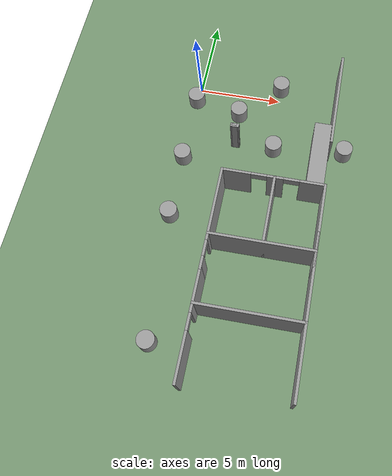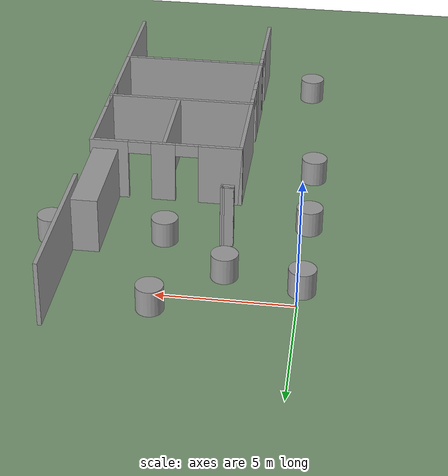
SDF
<sdf version="1.7">
 <world name="default">
  <model name="ground_plane">
   <static>1</static>
   <link name="link">
    <collision name="collision">
     <geometry><plane><normal>0 0 1</normal><size>600 600</size></plane></geometry>
     <surface>
      <contact><collide_bitmask>65535</collide_bitmask></contact>
      <friction><ode><mu>100</mu><mu2>50</mu2></ode></friction>
     </surface>
    </collision>
    <visual name="visual">
     <cast_shadows>0</cast_shadows>
     <geometry><plane><normal>0 0 1</normal><size>100 100</size></plane></geometry>
     <material><ambient>0.45 0.57 0.43 1</ambient><diffuse>0.45 0.57 0.43 1</diffuse></material>
    </visual>
   </link>
  </model>
  <model name="unit_box">
   <pose>7.98131 -4.36327 1.08892 0 -0.000118 -1.56862</pose>
   <link name="link">
    <inertial>
     <mass>1</mass>
     <inertia>
      <ixx>0.166667</ixx>
      <ixy>0</ixy>
      <ixz>0</ixz>
      <iyy>0.166667</iyy>
      <iyz>0</iyz>
      <izz>0.166667</izz>
     </inertia>
    </inertial>
    <collision name="collision"><geometry><box><size>3.92499 1 2.1783</size></box></geometry></collision>
    <visual name="visual">
     <geometry><box><size>3.92499 1 2.1783</size></box></geometry>
     <material>
      <script><name>Gazebo/Grey</name><uri>file://media/materials/scripts/gazebo.material</uri></script>
     </material>
    </visual>
   </link>
  </model>
  <model name="unit_cylinder">
   <pose>-0.092764 -5.01656 0.499994 4e-06 -2e-06 0</pose>
   <link name="link">
    <inertial>
     <mass>1</mass>
     <inertia><ixx>0.145833</ixx><ixy>0</ixy><ixz>0</ixz><iyy>0.145833</iyy><iyz>0</iyz><izz>0.125</izz></inertia>
    </inertial>
    <collision name="collision">
     <geometry><cylinder><radius>0.5</radius><length>1</length></cylinder></geometry>
    </collision>
    <visual name="visual">
     <geometry><cylinder><radius>0.5</radius><length>1</length></cylinder></geometry>
     <material>
      <script><name>Gazebo/Grey</name><uri>file://media/materials/scripts/gazebo.material</uri></script>
     </material>
    </visual>
   </link>
  </model>
  <model name="unit_cylinder_0">
   <pose>-0.106654 -0.917945 0.499997 -1e-06 1e-06 0</pose>
   <link name="link">
    <inertial>
     <mass>1</mass>
     <inertia><ixx>0.145833</ixx><ixy>0</ixy><ixz>0</ixz><iyy>0.145833</iyy><iyz>0</iyz><izz>0.125</izz></inertia>
    </inertial>
    <collision name="collision">
     <geometry><cylinder><radius>0.5</radius><length>1</length></cylinder></geometry>
    </collision>
    <visual name="visual">
     <geometry><cylinder><radius>0.5</radius><length>1</length></cylinder></geometry>
     <material>
      <script><name>Gazebo/Grey</name><uri>file://media/materials/scripts/gazebo.material</uri></script>
     </material>
    </visual>
   </link>
  </model>
  <model name="unit_cylinder_1">
   <pose>5.20322 -3.53373 0.499994 4e-06 -2e-06 0</pose>
   <link name="link">
    <inertial>
     <mass>1</mass>
     <inertia><ixx>0.145833</ixx><ixy>0</ixy><ixz>0</ixz><iyy>0.145833</iyy><iyz>0</iyz><izz>0.125</izz></inertia>
    </inertial>
    <collision name="collision">
     <geometry><cylinder><radius>0.5</radius><length>1</length></cylinder></geometry>
    </collision>
    <visual name="visual">
     <geometry><cylinder><radius>0.5</radius><length>1</length></cylinder></geometry>
     <material>
      <script><name>Gazebo/Grey</name><uri>file://media/materials/scripts/gazebo.material</uri></script>
     </material>
    </visual>
   </link>
  </model>
  <model name="unit_cylinder_2">
   <pose>5.01639 0.814958 0.5 0 -0 0</pose>
   <link name="link">
    <inertial>
     <mass>1</mass>
     <inertia><ixx>0.145833</ixx><ixy>0</ixy><ixz>0</ixz><iyy>0.145833</iyy><iyz>0</iyz><izz>0.125</izz></inertia>
    </inertial>
    <collision name="collision">
     <geometry><cylinder><radius>0.5</radius><length>1</length></cylinder></geometry>
    </collision>
    <visual name="visual">
     <geometry><cylinder><radius>0.5</radius><length>1</length></cylinder></geometry>
     <material>
      <script><name>Gazebo/Grey</name><uri>file://media/materials/scripts/gazebo.material</uri></script>
     </material>
    </visual>
   </link>
  </model>
  <model name="unit_cylinder_3">
   <pose>-0.035798 -8.83549 0.499996 -3e-06 1e-06 0</pose>
   <link name="link">
    <inertial>
     <mass>1</mass>
     <inertia><ixx>0.145833</ixx><ixy>0</ixy><ixz>0</ixz><iyy>0.145833</iyy><iyz>0</iyz><izz>0.125</izz></inertia>
    </inertial>
    <collision name="collision">
     <geometry><cylinder><radius>0.5</radius><length>1</length></cylinder></geometry>
    </collision>
    <visual name="visual">
     <geometry><cylinder><radius>0.5</radius><length>1</length></cylinder></geometry>
     <material>
      <script><name>Gazebo/Grey</name><uri>file://media/materials/scripts/gazebo.material</uri></script>
     </material>
    </visual>
   </link>
  </model>
  <model name="unit_cylinder_9">
   <pose>0.507553 -16.1833 0.499994 -4e-06 -2e-06 -0</pose>
   <link name="link">
    <inertial>
     <mass>1</mass>
     <inertia><ixx>0.145833</ixx><ixy>0</ixy><ixz>0</ixz><iyy>0.145833</iyy><iyz>0</iyz><izz>0.125</izz></inertia>
    </inertial>
    <collision name="collision">
     <geometry><cylinder><radius>0.5</radius><length>1</length></cylinder></geometry>
    </collision>
    <visual name="visual">
     <geometry><cylinder><radius>0.5</radius><length>1</length></cylinder></geometry>
     <material>
      <script><name>Gazebo/Grey</name><uri>file://media/materials/scripts/gazebo.material</uri></script>
     </material>
    </visual>
   </link>
  </model>
  <model name="myhal_V3_2">
   <link name="Wall_477">
    <pose>8.775 -2.85 0 0 -0 1.5708</pose>
    <visual name="Wall_477_Visual">
     <pose>0 0 1.25 0 -0 0</pose>
     <geometry><box><size>6 0.15 2.5</size></box></geometry>
     <material>
      <script><uri>file://media/materials/scripts/gazebo.material</uri><name>Gazebo/Grey</name></script>
      <ambient>1 1 1 1</ambient>
      <shader type="pixel"/>
     </material>
     <meta><layer>0</layer></meta>
    </visual>
    <collision name="Wall_477_Collision">
     <pose>0 0 1.25 0 -0 0</pose>
     <geometry><box><size>6 0.15 2.5</size></box></geometry>
     <surface>
      <friction>
       <ode><mu>1</mu><mu2>1</mu2><fdir1>0 0 0</fdir1><slip1>0</slip1><slip2>0</slip2></ode>
       <torsional>
        <coefficient>1</coefficient>
        <patch_radius>0</patch_radius>
        <surface_radius>0</surface_radius>
        <use_patch_radius>1</use_patch_radius>
        <ode><slip>0</slip></ode>
       </torsional>
      </friction>
      <bounce><restitution_coefficient>0</restitution_coefficient><threshold>1e+06</threshold></bounce>
      <contact>
       <collide_without_contact>0</collide_without_contact>
       <collide_without_contact_bitmask>1</collide_without_contact_bitmask>
       <collide_bitmask>1</collide_bitmask>
       <ode>
        <soft_cfm>0</soft_cfm>
        <soft_erp>0.2</soft_erp>
        <kp>1e+13</kp>
        <kd>1</kd>
        <max_vel>0.01</max_vel>
        <min_depth>0</min_depth>
       </ode>
       <bullet>
        <split_impulse>1</split_impulse>
        <split_impulse_penetration_threshold>-0.01</split_impulse_penetration_threshold>
        <soft_cfm>0</soft_cfm>
        <soft_erp>0.2</soft_erp>
        <kp>1e+13</kp>
        <kd>1</kd>
       </bullet>
      </contact>
     </surface>
    </collision>
   </link>
   <link name="Wall_482">
    <pose>2.925 -11.55 0 0 0 -1.5708</pose>
    <visual name="Wall_482_Visual_0">
     <pose>-0.826638 0 1.25 0 -0 0</pose>
     <geometry><box><size>4.34672 0.15 2.5</size></box></geometry>
     <material>
      <script><uri>file://media/materials/scripts/gazebo.material</uri><name>Gazebo/Grey</name></script>
      <ambient>1 1 1 1</ambient>
      <shader type="pixel"/>
     </material>
     <meta><layer>0</layer></meta>
    </visual>
    <visual name="Wall_482_Visual_1">
     <pose>2.62336 0 1.25 0 -0 0</pose>
     <geometry><box><size>0.753277 0.15 2.5</size></box></geometry>
     <material>
      <script><uri>file://media/materials/scripts/gazebo.material</uri><name>Gazebo/Grey</name></script>
      <ambient>1 1 1 1</ambient>
      <shader type="pixel"/>
     </material>
     <meta><layer>0</layer></meta>
    </visual>
    <visual name="Wall_482_Visual_2">
     <pose>1.79672 0 2.25 0 -0 0</pose>
     <geometry><box><size>0.9 0.15 0.5</size></box></geometry>
     <material>
      <script><uri>file://media/materials/scripts/gazebo.material</uri><name>Gazebo/Grey</name></script>
      <ambient>1 1 1 1</ambient>
      <shader type="pixel"/>
     </material>
     <meta><layer>0</layer></meta>
    </visual>
    <collision name="Wall_482_Collision_0">
     <pose>-0.826638 0 1.25 0 -0 0</pose>
     <geometry><box><size>4.34672 0.15 2.5</size></box></geometry>
     <surface>
      <friction>
       <ode><mu>1</mu><mu2>1</mu2><fdir1>0 0 0</fdir1><slip1>0</slip1><slip2>0</slip2></ode>
       <torsional>
        <coefficient>1</coefficient>
        <patch_radius>0</patch_radius>
        <surface_radius>0</surface_radius>
        <use_patch_radius>1</use_patch_radius>
        <ode><slip>0</slip></ode>
       </torsional>
      </friction>
      <bounce><restitution_coefficient>0</restitution_coefficient><threshold>1e+06</threshold></bounce>
      <contact>
       <collide_without_contact>0</collide_without_contact>
       <collide_without_contact_bitmask>1</collide_without_contact_bitmask>
       <collide_bitmask>1</collide_bitmask>
       <ode>
        <soft_cfm>0</soft_cfm>
        <soft_erp>0.2</soft_erp>
        <kp>1e+13</kp>
        <kd>1</kd>
        <max_vel>0.01</max_vel>
        <min_depth>0</min_depth>
       </ode>
       <bullet>
        <split_impulse>1</split_impulse>
        <split_impulse_penetration_threshold>-0.01</split_impulse_penetration_threshold>
        <soft_cfm>0</soft_cfm>
        <soft_erp>0.2</soft_erp>
        <kp>1e+13</kp>
        <kd>1</kd>
       </bullet>
      </contact>
     </surface>
    </collision>
    <collision name="Wall_482_Collision_1">
     <pose>2.62336 0 1.25 0 -0 0</pose>
     <geometry><box><size>0.753277 0.15 2.5</size></box></geometry>
     <surface>
      <friction>
       <ode><mu>1</mu><mu2>1</mu2><fdir1>0 0 0</fdir1><slip1>0</slip1><slip2>0</slip2></ode>
       <torsional>
        <coefficient>1</coefficient>
        <patch_radius>0</patch_radius>
        <surface_radius>0</surface_radius>
        <use_patch_radius>1</use_patch_radius>
        <ode><slip>0</slip></ode>
       </torsional>
      </friction>
      <bounce><restitution_coefficient>0</restitution_coefficient><threshold>1e+06</threshold></bounce>
      <contact>
       <collide_without_contact>0</collide_without_contact>
       <collide_without_contact_bitmask>1</collide_without_contact_bitmask>
       <collide_bitmask>1</collide_bitmask>
       <ode>
        <soft_cfm>0</soft_cfm>
        <soft_erp>0.2</soft_erp>
        <kp>1e+13</kp>
        <kd>1</kd>
        <max_vel>0.01</max_vel>
        <min_depth>0</min_depth>
       </ode>
       <bullet>
        <split_impulse>1</split_impulse>
        <split_impulse_penetration_threshold>-0.01</split_impulse_penetration_threshold>
        <soft_cfm>0</soft_cfm>
        <soft_erp>0.2</soft_erp>
        <kp>1e+13</kp>
        <kd>1</kd>
       </bullet>
      </contact>
     </surface>
    </collision>
    <collision name="Wall_482_Collision_2">
     <pose>1.79672 0 2.25 0 -0 0</pose>
     <geometry><box><size>0.9 0.15 0.5</size></box></geometry>
     <surface>
      <friction>
       <ode><mu>1</mu><mu2>1</mu2><fdir1>0 0 0</fdir1><slip1>0</slip1><slip2>0</slip2></ode>
       <torsional>
        <coefficient>1</coefficient>
        <patch_radius>0</patch_radius>
        <surface_radius>0</surface_radius>
        <use_patch_radius>1</use_patch_radius>
        <ode><slip>0</slip></ode>
       </torsional>
      </friction>
      <bounce><restitution_coefficient>0</restitution_coefficient><threshold>1e+06</threshold></bounce>
      <contact>
       <collide_without_contact>0</collide_without_contact>
       <collide_without_contact_bitmask>1</collide_without_contact_bitmask>
       <collide_bitmask>1</collide_bitmask>
       <ode>
        <soft_cfm>0</soft_cfm>
        <soft_erp>0.2</soft_erp>
        <kp>1e+13</kp>
        <kd>1</kd>
        <max_vel>0.01</max_vel>
        <min_depth>0</min_depth>
       </ode>
       <bullet>
        <split_impulse>1</split_impulse>
        <split_impulse_penetration_threshold>-0.01</split_impulse_penetration_threshold>
        <soft_cfm>0</soft_cfm>
        <soft_erp>0.2</soft_erp>
        <kp>1e+13</kp>
        <kd>1</kd>
       </bullet>
      </contact>
     </surface>
    </collision>
   </link>
   <link name="Wall_484">
    <pose>2.925 -17.4 0 0 0 -1.5708</pose>
    <visual name="Wall_484_Visual_0">
     <pose>-1.77874 0 1.25 0 -0 0</pose>
     <geometry><box><size>2.44252 0.15 2.5</size></box></geometry>
     <material>
      <script><uri>file://media/materials/scripts/gazebo.material</uri><name>Gazebo/Grey</name></script>
      <ambient>1 1 1 1</ambient>
      <shader type="pixel"/>
     </material>
     <meta><layer>0</layer></meta>
    </visual>
    <visual name="Wall_484_Visual_1">
     <pose>1.67126 0 1.25 0 -0 0</pose>
     <geometry><box><size>2.65748 0.15 2.5</size></box></geometry>
     <material>
      <script><uri>file://media/materials/scripts/gazebo.material</uri><name>Gazebo/Grey</name></script>
      <ambient>1 1 1 1</ambient>
      <shader type="pixel"/>
     </material>
     <meta><layer>0</layer></meta>
    </visual>
    <visual name="Wall_484_Visual_2">
     <pose>-0.107481 0 2.25 0 -0 0</pose>
     <geometry><box><size>0.9 0.15 0.5</size></box></geometry>
     <material>
      <script><uri>file://media/materials/scripts/gazebo.material</uri><name>Gazebo/Grey</name></script>
      <ambient>1 1 1 1</ambient>
      <shader type="pixel"/>
     </material>
     <meta><layer>0</layer></meta>
    </visual>
    <collision name="Wall_484_Collision_0">
     <pose>-1.77874 0 1.25 0 -0 0</pose>
     <geometry><box><size>2.44252 0.15 2.5</size></box></geometry>
     <surface>
      <friction>
       <ode><mu>1</mu><mu2>1</mu2><fdir1>0 0 0</fdir1><slip1>0</slip1><slip2>0</slip2></ode>
       <torsional>
        <coefficient>1</coefficient>
        <patch_radius>0</patch_radius>
        <surface_radius>0</surface_radius>
        <use_patch_radius>1</use_patch_radius>
        <ode><slip>0</slip></ode>
       </torsional>
      </friction>
      <bounce><restitution_coefficient>0</restitution_coefficient><threshold>1e+06</threshold></bounce>
      <contact>
       <collide_without_contact>0</collide_without_contact>
       <collide_without_contact_bitmask>1</collide_without_contact_bitmask>
       <collide_bitmask>1</collide_bitmask>
       <ode>
        <soft_cfm>0</soft_cfm>
        <soft_erp>0.2</soft_erp>
        <kp>1e+13</kp>
        <kd>1</kd>
        <max_vel>0.01</max_vel>
        <min_depth>0</min_depth>
       </ode>
       <bullet>
        <split_impulse>1</split_impulse>
        <split_impulse_penetration_threshold>-0.01</split_impulse_penetration_threshold>
        <soft_cfm>0</soft_cfm>
        <soft_erp>0.2</soft_erp>
        <kp>1e+13</kp>
        <kd>1</kd>
       </bullet>
      </contact>
     </surface>
    </collision>
    <collision name="Wall_484_Collision_1">
     <pose>1.67126 0 1.25 0 -0 0</pose>
     <geometry><box><size>2.65748 0.15 2.5</size></box></geometry>
     <surface>
      <friction>
       <ode><mu>1</mu><mu2>1</mu2><fdir1>0 0 0</fdir1><slip1>0</slip1><slip2>0</slip2></ode>
       <torsional>
        <coefficient>1</coefficient>
        <patch_radius>0</patch_radius>
        <surface_radius>0</surface_radius>
        <use_patch_radius>1</use_patch_radius>
        <ode><slip>0</slip></ode>
       </torsional>
      </friction>
      <bounce><restitution_coefficient>0</restitution_coefficient><threshold>1e+06</threshold></bounce>
      <contact>
       <collide_without_contact>0</collide_without_contact>
       <collide_without_contact_bitmask>1</collide_without_contact_bitmask>
       <collide_bitmask>1</collide_bitmask>
       <ode>
        <soft_cfm>0</soft_cfm>
        <soft_erp>0.2</soft_erp>
        <kp>1e+13</kp>
        <kd>1</kd>
        <max_vel>0.01</max_vel>
        <min_depth>0</min_depth>
       </ode>
       <bullet>
        <split_impulse>1</split_impulse>
        <split_impulse_penetration_threshold>-0.01</split_impulse_penetration_threshold>
        <soft_cfm>0</soft_cfm>
        <soft_erp>0.2</soft_erp>
        <kp>1e+13</kp>
        <kd>1</kd>
       </bullet>
      </contact>
     </surface>
    </collision>
    <collision name="Wall_484_Collision_2">
     <pose>-0.107481 0 2.25 0 -0 0</pose>
     <geometry><box><size>0.9 0.15 0.5</size></box></geometry>
     <surface>
      <friction>
       <ode><mu>1</mu><mu2>1</mu2><fdir1>0 0 0</fdir1><slip1>0</slip1><slip2>0</slip2></ode>
       <torsional>
        <coefficient>1</coefficient>
        <patch_radius>0</patch_radius>
        <surface_radius>0</surface_radius>
        <use_patch_radius>1</use_patch_radius>
        <ode><slip>0</slip></ode>
       </torsional>
      </friction>
      <bounce><restitution_coefficient>0</restitution_coefficient><threshold>1e+06</threshold></bounce>
      <contact>
       <collide_without_contact>0</collide_without_contact>
       <collide_without_contact_bitmask>1</collide_without_contact_bitmask>
       <collide_bitmask>1</collide_bitmask>
       <ode>
        <soft_cfm>0</soft_cfm>
        <soft_erp>0.2</soft_erp>
        <kp>1e+13</kp>
        <kd>1</kd>
        <max_vel>0.01</max_vel>
        <min_depth>0</min_depth>
       </ode>
       <bullet>
        <split_impulse>1</split_impulse>
        <split_impulse_penetration_threshold>-0.01</split_impulse_penetration_threshold>
        <soft_cfm>0</soft_cfm>
        <soft_erp>0.2</soft_erp>
        <kp>1e+13</kp>
        <kd>1</kd>
       </bullet>
      </contact>
     </surface>
    </collision>
   </link>
   <link name="Wall_486">
    <pose>5.85 -8.625 0 0 -0 0</pose>
    <inertial>
     <mass>1</mass>
     <inertia><ixx>1</ixx><ixy>0</ixy><ixz>0</ixz><iyy>1</iyy><iyz>0</iyz><izz>1</izz></inertia>
    </inertial>
    <visual name="Wall_486_Visual_0">
     <pose>-2.13314 0 1.25 0 -0 0</pose>
     <geometry><box><size>1.73371 0.15 2.5</size></box></geometry>
     <material>
      <script><uri>file://media/materials/scripts/gazebo.material</uri><name>Gazebo/Grey</name></script>
      <ambient>1 1 1 1</ambient>
      <shader type="pixel"><normal_map>__default__</normal_map></shader>
     </material>
     <meta><layer>0</layer></meta>
    </visual>
    <visual name="Wall_486_Visual_1">
     <pose>0.10739 0 1.25 0 -0 0</pose>
     <geometry><box><size>0.94735 0.15 2.5</size></box></geometry>
     <material>
      <script><uri>file://media/materials/scripts/gazebo.material</uri><name>Gazebo/Grey</name></script>
      <ambient>1 1 1 1</ambient>
      <shader type="pixel"><normal_map>__default__</normal_map></shader>
     </material>
     <meta><layer>0</layer></meta>
    </visual>
    <visual name="Wall_486_Visual_2">
     <pose>2.24053 0 1.25 0 -0 0</pose>
     <geometry><box><size>1.51893 0.15 2.5</size></box></geometry>
     <material>
      <script><uri>file://media/materials/scripts/gazebo.material</uri><name>Gazebo/Grey</name></script>
      <ambient>1 1 1 1</ambient>
      <shader type="pixel"><normal_map>__default__</normal_map></shader>
     </material>
     <meta><layer>0</layer></meta>
    </visual>
    <visual name="Wall_486_Visual_3">
     <pose>-0.816286 0 2.25 0 -0 0</pose>
     <geometry><box><size>0.9 0.15 0.5</size></box></geometry>
     <material>
      <script><uri>file://media/materials/scripts/gazebo.material</uri><name>Gazebo/Grey</name></script>
      <ambient>1 1 1 1</ambient>
      <shader type="pixel"><normal_map>__default__</normal_map></shader>
     </material>
     <meta><layer>0</layer></meta>
    </visual>
    <visual name="Wall_486_Visual_4">
     <pose>1.03106 0 2.25 0 -0 0</pose>
     <geometry><box><size>0.9 0.15 0.5</size></box></geometry>
     <material>
      <script><uri>file://media/materials/scripts/gazebo.material</uri><name>Gazebo/Grey</name></script>
      <ambient>1 1 1 1</ambient>
      <shader type="pixel"><normal_map>__default__</normal_map></shader>
     </material>
     <meta><layer>0</layer></meta>
    </visual>
    <collision name="Wall_486_Collision_0">
     <pose>-2.13314 0 1.25 0 -0 0</pose>
     <geometry><box><size>1.73371 0.15 2.5</size></box></geometry>
     <surface>
      <friction>
       <ode><mu>1</mu><mu2>1</mu2><fdir1>0 0 0</fdir1><slip1>0</slip1><slip2>0</slip2></ode>
       <torsional>
        <coefficient>1</coefficient>
        <patch_radius>0</patch_radius>
        <surface_radius>0</surface_radius>
        <use_patch_radius>1</use_patch_radius>
        <ode><slip>0</slip></ode>
       </torsional>
      </friction>
      <bounce><restitution_coefficient>0</restitution_coefficient><threshold>1e+06</threshold></bounce>
      <contact>
       <collide_without_contact>0</collide_without_contact>
       <collide_without_contact_bitmask>1</collide_without_contact_bitmask>
       <collide_bitmask>1</collide_bitmask>
       <ode>
        <soft_cfm>0</soft_cfm>
        <soft_erp>0.2</soft_erp>
        <kp>1e+13</kp>
        <kd>1</kd>
        <max_vel>0.01</max_vel>
        <min_depth>0</min_depth>
       </ode>
       <bullet>
        <split_impulse>1</split_impulse>
        <split_impulse_penetration_threshold>-0.01</split_impulse_penetration_threshold>
        <soft_cfm>0</soft_cfm>
        <soft_erp>0.2</soft_erp>
        <kp>1e+13</kp>
        <kd>1</kd>
       </bullet>
      </contact>
     </surface>
    </collision>
    <collision name="Wall_486_Collision_1">
     <pose>0.10739 0 1.25 0 -0 0</pose>
     <geometry><box><size>0.94735 0.15 2.5</size></box></geometry>
     <surface>
      <friction>
       <ode><mu>1</mu><mu2>1</mu2><fdir1>0 0 0</fdir1><slip1>0</slip1><slip2>0</slip2></ode>
       <torsional>
        <coefficient>1</coefficient>
        <patch_radius>0</patch_radius>
        <surface_radius>0</surface_radius>
        <use_patch_radius>1</use_patch_radius>
        <ode><slip>0</slip></ode>
       </torsional>
      </friction>
      <bounce><restitution_coefficient>0</restitution_coefficient><threshold>1e+06</threshold></bounce>
      <contact>
       <collide_without_contact>0</collide_without_contact>
       <collide_without_contact_bitmask>1</collide_without_contact_bitmask>
       <collide_bitmask>1</collide_bitmask>
       <ode>
        <soft_cfm>0</soft_cfm>
        <soft_erp>0.2</soft_erp>
        <kp>1e+13</kp>
        <kd>1</kd>
        <max_vel>0.01</max_vel>
        <min_depth>0</min_depth>
       </ode>
       <bullet>
        <split_impulse>1</split_impulse>
        <split_impulse_penetration_threshold>-0.01</split_impulse_penetration_threshold>
        <soft_cfm>0</soft_cfm>
        <soft_erp>0.2</soft_erp>
        <kp>1e+13</kp>
        <kd>1</kd>
       </bullet>
      </contact>
     </surface>
    </collision>
    <collision name="Wall_486_Collision_2">
     <pose>2.24053 0 1.25 0 -0 0</pose>
     <geometry><box><size>1.51893 0.15 2.5</size></box></geometry>
     <surface>
      <friction>
       <ode><mu>1</mu><mu2>1</mu2><fdir1>0 0 0</fdir1><slip1>0</slip1><slip2>0</slip2></ode>
       <torsional>
        <coefficient>1</coefficient>
        <patch_radius>0</patch_radius>
        <surface_radius>0</surface_radius>
        <use_patch_radius>1</use_patch_radius>
        <ode><slip>0</slip></ode>
       </torsional>
      </friction>
      <bounce><restitution_coefficient>0</restitution_coefficient><threshold>1e+06</threshold></bounce>
      <contact>
       <collide_without_contact>0</collide_without_contact>
       <collide_without_contact_bitmask>1</collide_without_contact_bitmask>
       <collide_bitmask>1</collide_bitmask>
       <ode>
        <soft_cfm>0</soft_cfm>
        <soft_erp>0.2</soft_erp>
        <kp>1e+13</kp>
        <kd>1</kd>
        <max_vel>0.01</max_vel>
        <min_depth>0</min_depth>
       </ode>
       <bullet>
        <split_impulse>1</split_impulse>
        <split_impulse_penetration_threshold>-0.01</split_impulse_penetration_threshold>
        <soft_cfm>0</soft_cfm>
        <soft_erp>0.2</soft_erp>
        <kp>1e+13</kp>
        <kd>1</kd>
       </bullet>
      </contact>
     </surface>
    </collision>
    <collision name="Wall_486_Collision_3">
     <pose>-0.816286 0 2.25 0 -0 0</pose>
     <geometry><box><size>0.9 0.15 0.5</size></box></geometry>
     <surface>
      <friction>
       <ode><mu>1</mu><mu2>1</mu2><fdir1>0 0 0</fdir1><slip1>0</slip1><slip2>0</slip2></ode>
       <torsional>
        <coefficient>1</coefficient>
        <patch_radius>0</patch_radius>
        <surface_radius>0</surface_radius>
        <use_patch_radius>1</use_patch_radius>
        <ode><slip>0</slip></ode>
       </torsional>
      </friction>
      <bounce><restitution_coefficient>0</restitution_coefficient><threshold>1e+06</threshold></bounce>
      <contact>
       <collide_without_contact>0</collide_without_contact>
       <collide_without_contact_bitmask>1</collide_without_contact_bitmask>
       <collide_bitmask>1</collide_bitmask>
       <ode>
        <soft_cfm>0</soft_cfm>
        <soft_erp>0.2</soft_erp>
        <kp>1e+13</kp>
        <kd>1</kd>
        <max_vel>0.01</max_vel>
        <min_depth>0</min_depth>
       </ode>
       <bullet>
        <split_impulse>1</split_impulse>
        <split_impulse_penetration_threshold>-0.01</split_impulse_penetration_threshold>
        <soft_cfm>0</soft_cfm>
        <soft_erp>0.2</soft_erp>
        <kp>1e+13</kp>
        <kd>1</kd>
       </bullet>
      </contact>
     </surface>
    </collision>
    <collision name="Wall_486_Collision_4">
     <pose>1.03106 0 2.25 0 -0 0</pose>
     <geometry><box><size>0.9 0.15 0.5</size></box></geometry>
     <surface>
      <friction>
       <ode><mu>1</mu><mu2>1</mu2><fdir1>0 0 0</fdir1><slip1>0</slip1><slip2>0</slip2></ode>
       <torsional>
        <coefficient>1</coefficient>
        <patch_radius>0</patch_radius>
        <surface_radius>0</surface_radius>
        <use_patch_radius>1</use_patch_radius>
        <ode><slip>0</slip></ode>
       </torsional>
      </friction>
      <bounce><restitution_coefficient>0</restitution_coefficient><threshold>1e+06</threshold></bounce>
      <contact>
       <collide_without_contact>0</collide_without_contact>
       <collide_without_contact_bitmask>1</collide_without_contact_bitmask>
       <collide_bitmask>1</collide_bitmask>
       <ode>
        <soft_cfm>0</soft_cfm>
        <soft_erp>0.2</soft_erp>
        <kp>1e+13</kp>
        <kd>1</kd>
        <max_vel>0.01</max_vel>
        <min_depth>0</min_depth>
       </ode>
       <bullet>
        <split_impulse>1</split_impulse>
        <split_impulse_penetration_threshold>-0.01</split_impulse_penetration_threshold>
        <soft_cfm>0</soft_cfm>
        <soft_erp>0.2</soft_erp>
        <kp>1e+13</kp>
        <kd>1</kd>
       </bullet>
      </contact>
     </surface>
    </collision>
   </link>
   <link name="Wall_487">
    <pose>8.775 -10.559 0 0 0 -1.5708</pose>
    <visual name="Wall_487_Visual">
     <pose>0 0 1.25 0 -0 0</pose>
     <geometry><box><size>4.01793 0.15 2.5</size></box></geometry>
     <material>
      <script><uri>file://media/materials/scripts/gazebo.material</uri><name>Gazebo/Grey</name></script>
      <ambient>1 1 1 1</ambient>
      <shader type="pixel"/>
     </material>
     <meta><layer>0</layer></meta>
    </visual>
    <collision name="Wall_487_Collision">
     <pose>0 0 1.25 0 -0 0</pose>
     <geometry><box><size>4.01793 0.15 2.5</size></box></geometry>
     <surface>
      <friction>
       <ode><mu>1</mu><mu2>1</mu2><fdir1>0 0 0</fdir1><slip1>0</slip1><slip2>0</slip2></ode>
       <torsional>
        <coefficient>1</coefficient>
        <patch_radius>0</patch_radius>
        <surface_radius>0</surface_radius>
        <use_patch_radius>1</use_patch_radius>
        <ode><slip>0</slip></ode>
       </torsional>
      </friction>
      <bounce><restitution_coefficient>0</restitution_coefficient><threshold>1e+06</threshold></bounce>
      <contact>
       <collide_without_contact>0</collide_without_contact>
       <collide_without_contact_bitmask>1</collide_without_contact_bitmask>
       <collide_bitmask>1</collide_bitmask>
       <ode>
        <soft_cfm>0</soft_cfm>
        <soft_erp>0.2</soft_erp>
        <kp>1e+13</kp>
        <kd>1</kd>
        <max_vel>0.01</max_vel>
        <min_depth>0</min_depth>
       </ode>
       <bullet>
        <split_impulse>1</split_impulse>
        <split_impulse_penetration_threshold>-0.01</split_impulse_penetration_threshold>
        <soft_cfm>0</soft_cfm>
        <soft_erp>0.2</soft_erp>
        <kp>1e+13</kp>
        <kd>1</kd>
       </bullet>
      </contact>
     </surface>
    </collision>
   </link>
   <link name="Wall_488">
    <pose>8.775 -14.409 0 0 0 -1.5708</pose>
    <visual name="Wall_488_Visual">
     <pose>0 0 1.25 0 -0 0</pose>
     <geometry><box><size>3.98206 0.15 2.5</size></box></geometry>
     <material>
      <script><uri>file://media/materials/scripts/gazebo.material</uri><name>Gazebo/Grey</name></script>
      <ambient>1 1 1 1</ambient>
      <shader type="pixel"/>
     </material>
     <meta><layer>0</layer></meta>
    </visual>
    <collision name="Wall_488_Collision">
     <pose>0 0 1.25 0 -0 0</pose>
     <geometry><box><size>3.98206 0.15 2.5</size></box></geometry>
     <surface>
      <friction>
       <ode><mu>1</mu><mu2>1</mu2><fdir1>0 0 0</fdir1><slip1>0</slip1><slip2>0</slip2></ode>
       <torsional>
        <coefficient>1</coefficient>
        <patch_radius>0</patch_radius>
        <surface_radius>0</surface_radius>
        <use_patch_radius>1</use_patch_radius>
        <ode><slip>0</slip></ode>
       </torsional>
      </friction>
      <bounce><restitution_coefficient>0</restitution_coefficient><threshold>1e+06</threshold></bounce>
      <contact>
       <collide_without_contact>0</collide_without_contact>
       <collide_without_contact_bitmask>1</collide_without_contact_bitmask>
       <collide_bitmask>1</collide_bitmask>
       <ode>
        <soft_cfm>0</soft_cfm>
        <soft_erp>0.2</soft_erp>
        <kp>1e+13</kp>
        <kd>1</kd>
        <max_vel>0.01</max_vel>
        <min_depth>0</min_depth>
       </ode>
       <bullet>
        <split_impulse>1</split_impulse>
        <split_impulse_penetration_threshold>-0.01</split_impulse_penetration_threshold>
        <soft_cfm>0</soft_cfm>
        <soft_erp>0.2</soft_erp>
        <kp>1e+13</kp>
        <kd>1</kd>
       </bullet>
      </contact>
     </surface>
    </collision>
   </link>
   <link name="Wall_489">
    <pose>8.775 -18.25 0 0 0 -1.5708</pose>
    <visual name="Wall_489_Visual">
     <pose>0 0 1.25 0 -0 0</pose>
     <geometry><box><size>4 0.15 2.5</size></box></geometry>
     <material>
      <script><uri>file://media/materials/scripts/gazebo.material</uri><name>Gazebo/Grey</name></script>
      <ambient>1 1 1 1</ambient>
      <shader type="pixel"/>
     </material>
     <meta><layer>0</layer></meta>
    </visual>
    <collision name="Wall_489_Collision">
     <pose>0 0 1.25 0 -0 0</pose>
     <geometry><box><size>4 0.15 2.5</size></box></geometry>
     <surface>
      <friction>
       <ode><mu>1</mu><mu2>1</mu2><fdir1>0 0 0</fdir1><slip1>0</slip1><slip2>0</slip2></ode>
       <torsional>
        <coefficient>1</coefficient>
        <patch_radius>0</patch_radius>
        <surface_radius>0</surface_radius>
        <use_patch_radius>1</use_patch_radius>
        <ode><slip>0</slip></ode>
       </torsional>
      </friction>
      <bounce><restitution_coefficient>0</restitution_coefficient><threshold>1e+06</threshold></bounce>
      <contact>
       <collide_without_contact>0</collide_without_contact>
       <collide_without_contact_bitmask>1</collide_without_contact_bitmask>
       <collide_bitmask>1</collide_bitmask>
       <ode>
        <soft_cfm>0</soft_cfm>
        <soft_erp>0.2</soft_erp>
        <kp>1e+13</kp>
        <kd>1</kd>
        <max_vel>0.01</max_vel>
        <min_depth>0</min_depth>
       </ode>
       <bullet>
        <split_impulse>1</split_impulse>
        <split_impulse_penetration_threshold>-0.01</split_impulse_penetration_threshold>
        <soft_cfm>0</soft_cfm>
        <soft_erp>0.2</soft_erp>
        <kp>1e+13</kp>
        <kd>1</kd>
       </bullet>
      </contact>
     </surface>
    </collision>
   </link>
   <link name="Wall_492">
    <pose>5.85 -12.4929 0 0 -0 3.14159</pose>
    <visual name="Wall_492_Visual">
     <pose>0 0 1.25 0 -0 0</pose>
     <geometry><box><size>6 0.15 2.5</size></box></geometry>
     <material>
      <script><uri>file://media/materials/scripts/gazebo.material</uri><name>Gazebo/Grey</name></script>
      <ambient>1 1 1 1</ambient>
      <shader type="pixel"/>
     </material>
     <meta><layer>0</layer></meta>
    </visual>
    <collision name="Wall_492_Collision">
     <pose>0 0 1.25 0 -0 0</pose>
     <geometry><box><size>6 0.15 2.5</size></box></geometry>
     <surface>
      <friction>
       <ode><mu>1</mu><mu2>1</mu2><fdir1>0 0 0</fdir1><slip1>0</slip1><slip2>0</slip2></ode>
       <torsional>
        <coefficient>1</coefficient>
        <patch_radius>0</patch_radius>
        <surface_radius>0</surface_radius>
        <use_patch_radius>1</use_patch_radius>
        <ode><slip>0</slip></ode>
       </torsional>
      </friction>
      <bounce><restitution_coefficient>0</restitution_coefficient><threshold>1e+06</threshold></bounce>
      <contact>
       <collide_without_contact>0</collide_without_contact>
       <collide_without_contact_bitmask>1</collide_without_contact_bitmask>
       <collide_bitmask>1</collide_bitmask>
       <ode>
        <soft_cfm>0</soft_cfm>
        <soft_erp>0.2</soft_erp>
        <kp>1e+13</kp>
        <kd>1</kd>
        <max_vel>0.01</max_vel>
        <min_depth>0</min_depth>
       </ode>
       <bullet>
        <split_impulse>1</split_impulse>
        <split_impulse_penetration_threshold>-0.01</split_impulse_penetration_threshold>
        <soft_cfm>0</soft_cfm>
        <soft_erp>0.2</soft_erp>
        <kp>1e+13</kp>
        <kd>1</kd>
       </bullet>
      </contact>
     </surface>
    </collision>
   </link>
   <link name="Wall_495">
    <pose>5.85 -16.325 0 0 -0 3.14159</pose>
    <visual name="Wall_495_Visual">
     <pose>0 0 1.25 0 -0 0</pose>
     <geometry><box><size>6 0.15 2.5</size></box></geometry>
     <material>
      <script><uri>file://media/materials/scripts/gazebo.material</uri><name>Gazebo/Grey</name></script>
      <ambient>1 1 1 1</ambient>
      <shader type="pixel"/>
     </material>
     <meta><layer>0</layer></meta>
    </visual>
    <collision name="Wall_495_Collision">
     <pose>0 0 1.25 0 -0 0</pose>
     <geometry><box><size>6 0.15 2.5</size></box></geometry>
     <surface>
      <friction>
       <ode><mu>1</mu><mu2>1</mu2><fdir1>0 0 0</fdir1><slip1>0</slip1><slip2>0</slip2></ode>
       <torsional>
        <coefficient>1</coefficient>
        <patch_radius>0</patch_radius>
        <surface_radius>0</surface_radius>
        <use_patch_radius>1</use_patch_radius>
        <ode><slip>0</slip></ode>
       </torsional>
      </friction>
      <bounce><restitution_coefficient>0</restitution_coefficient><threshold>1e+06</threshold></bounce>
      <contact>
       <collide_without_contact>0</collide_without_contact>
       <collide_without_contact_bitmask>1</collide_without_contact_bitmask>
       <collide_bitmask>1</collide_bitmask>
       <ode>
        <soft_cfm>0</soft_cfm>
        <soft_erp>0.2</soft_erp>
        <kp>1e+13</kp>
        <kd>1</kd>
        <max_vel>0.01</max_vel>
        <min_depth>0</min_depth>
       </ode>
       <bullet>
        <split_impulse>1</split_impulse>
        <split_impulse_penetration_threshold>-0.01</split_impulse_penetration_threshold>
        <soft_cfm>0</soft_cfm>
        <soft_erp>0.2</soft_erp>
        <kp>1e+13</kp>
        <kd>1</kd>
       </bullet>
      </contact>
     </surface>
    </collision>
   </link>
   <link name="Wall_532">
    <pose>8.775 -12.4 0 0 0 -1.5708</pose>
    <visual name="Wall_532_Visual">
     <pose>0 0 1.25 0 -0 0</pose>
     <geometry><box><size>2 0.15 2.5</size></box></geometry>
     <material>
      <script><uri>file://media/materials/scripts/gazebo.material</uri><name>Gazebo/Grey</name></script>
      <ambient>1 1 1 1</ambient>
      <shader type="pixel"/>
     </material>
     <meta><layer>0</layer></meta>
    </visual>
    <collision name="Wall_532_Collision">
     <pose>0 0 1.25 0 -0 0</pose>
     <geometry><box><size>2 0.15 2.5</size></box></geometry>
     <surface>
      <friction>
       <ode><mu>1</mu><mu2>1</mu2><fdir1>0 0 0</fdir1><slip1>0</slip1><slip2>0</slip2></ode>
       <torsional>
        <coefficient>1</coefficient>
        <patch_radius>0</patch_radius>
        <surface_radius>0</surface_radius>
        <use_patch_radius>1</use_patch_radius>
        <ode><slip>0</slip></ode>
       </torsional>
      </friction>
      <bounce><restitution_coefficient>0</restitution_coefficient><threshold>1e+06</threshold></bounce>
      <contact>
       <collide_without_contact>0</collide_without_contact>
       <collide_without_contact_bitmask>1</collide_without_contact_bitmask>
       <collide_bitmask>1</collide_bitmask>
       <ode>
        <soft_cfm>0</soft_cfm>
        <soft_erp>0.2</soft_erp>
        <kp>1e+13</kp>
        <kd>1</kd>
        <max_vel>0.01</max_vel>
        <min_depth>0</min_depth>
       </ode>
       <bullet>
        <split_impulse>1</split_impulse>
        <split_impulse_penetration_threshold>-0.01</split_impulse_penetration_threshold>
        <soft_cfm>0</soft_cfm>
        <soft_erp>0.2</soft_erp>
        <kp>1e+13</kp>
        <kd>1</kd>
       </bullet>
      </contact>
     </surface>
    </collision>
   </link>
   <link name="Wall_558">
    <pose>3.09888 -5.77612 0 0 0 -0.006463</pose>
    <visual name="Wall_558_Visual">
     <pose>0 0 1.25 0 -0 0</pose>
     <geometry><box><size>0.49776 0.15 2.5</size></box></geometry>
     <material>
      <script><uri>file://media/materials/scripts/gazebo.material</uri><name>Gazebo/Grey</name></script>
      <ambient>1 1 1 1</ambient>
      <shader type="pixel"/>
     </material>
     <meta><layer>0</layer></meta>
    </visual>
    <collision name="Wall_558_Collision">
     <pose>0 0 1.25 0 -0 0</pose>
     <geometry><box><size>0.49776 0.15 2.5</size></box></geometry>
     <surface>
      <friction>
       <ode><mu>1</mu><mu2>1</mu2><fdir1>0 0 0</fdir1><slip1>0</slip1><slip2>0</slip2></ode>
       <torsional>
        <coefficient>1</coefficient>
        <patch_radius>0</patch_radius>
        <surface_radius>0</surface_radius>
        <use_patch_radius>1</use_patch_radius>
        <ode><slip>0</slip></ode>
       </torsional>
      </friction>
      <bounce><restitution_coefficient>0</restitution_coefficient><threshold>1e+06</threshold></bounce>
      <contact>
       <collide_without_contact>0</collide_without_contact>
       <collide_without_contact_bitmask>1</collide_without_contact_bitmask>
       <collide_bitmask>1</collide_bitmask>
       <ode>
        <soft_cfm>0</soft_cfm>
        <soft_erp>0.2</soft_erp>
        <kp>1e+13</kp>
        <kd>1</kd>
        <max_vel>0.01</max_vel>
        <min_depth>0</min_depth>
       </ode>
       <bullet>
        <split_impulse>1</split_impulse>
        <split_impulse_penetration_threshold>-0.01</split_impulse_penetration_threshold>
        <soft_cfm>0</soft_cfm>
        <soft_erp>0.2</soft_erp>
        <kp>1e+13</kp>
        <kd>1</kd>
       </bullet>
      </contact>
     </surface>
    </collision>
   </link>
   <link name="Wall_572">
    <pose>2.925 -5.725 0 0 -0 1.5708</pose>
    <visual name="Wall_572_Visual">
     <pose>0 0 1.25 0 -0 0</pose>
     <geometry><box><size>0.25 0.15 2.5</size></box></geometry>
     <material>
      <script><uri>file://media/materials/scripts/gazebo.material</uri><name>Gazebo/Grey</name></script>
      <ambient>1 1 1 1</ambient>
      <shader type="pixel"/>
     </material>
     <meta><layer>0</layer></meta>
    </visual>
    <collision name="Wall_572_Collision">
     <pose>0 0 1.25 0 -0 0</pose>
     <geometry><box><size>0.25 0.15 2.5</size></box></geometry>
     <surface>
      <friction>
       <ode><mu>1</mu><mu2>1</mu2><fdir1>0 0 0</fdir1><slip1>0</slip1><slip2>0</slip2></ode>
       <torsional>
        <coefficient>1</coefficient>
        <patch_radius>0</patch_radius>
        <surface_radius>0</surface_radius>
        <use_patch_radius>1</use_patch_radius>
        <ode><slip>0</slip></ode>
       </torsional>
      </friction>
      <bounce><restitution_coefficient>0</restitution_coefficient><threshold>1e+06</threshold></bounce>
      <contact>
       <collide_without_contact>0</collide_without_contact>
       <collide_without_contact_bitmask>1</collide_without_contact_bitmask>
       <collide_bitmask>1</collide_bitmask>
       <ode>
        <soft_cfm>0</soft_cfm>
        <soft_erp>0.2</soft_erp>
        <kp>1e+13</kp>
        <kd>1</kd>
        <max_vel>0.01</max_vel>
        <min_depth>0</min_depth>
       </ode>
       <bullet>
        <split_impulse>1</split_impulse>
        <split_impulse_penetration_threshold>-0.01</split_impulse_penetration_threshold>
        <soft_cfm>0</soft_cfm>
        <soft_erp>0.2</soft_erp>
        <kp>1e+13</kp>
        <kd>1</kd>
       </bullet>
      </contact>
     </surface>
    </collision>
   </link>
   <link name="Wall_573">
    <pose>3.1 -5.675 0 0 -0 0</pose>
    <visual name="Wall_573_Visual">
     <pose>0 0 1.25 0 -0 0</pose>
     <geometry><box><size>0.5 0.15 2.5</size></box></geometry>
     <material>
      <script><uri>file://media/materials/scripts/gazebo.material</uri><name>Gazebo/Grey</name></script>
      <ambient>1 1 1 1</ambient>
      <shader type="pixel"/>
     </material>
     <meta><layer>0</layer></meta>
    </visual>
    <collision name="Wall_573_Collision">
     <pose>0 0 1.25 0 -0 0</pose>
     <geometry><box><size>0.5 0.15 2.5</size></box></geometry>
     <surface>
      <friction>
       <ode><mu>1</mu><mu2>1</mu2><fdir1>0 0 0</fdir1><slip1>0</slip1><slip2>0</slip2></ode>
       <torsional>
        <coefficient>1</coefficient>
        <patch_radius>0</patch_radius>
        <surface_radius>0</surface_radius>
        <use_patch_radius>1</use_patch_radius>
        <ode><slip>0</slip></ode>
       </torsional>
      </friction>
      <bounce><restitution_coefficient>0</restitution_coefficient><threshold>1e+06</threshold></bounce>
      <contact>
       <collide_without_contact>0</collide_without_contact>
       <collide_without_contact_bitmask>1</collide_without_contact_bitmask>
       <collide_bitmask>1</collide_bitmask>
       <ode>
        <soft_cfm>0</soft_cfm>
        <soft_erp>0.2</soft_erp>
        <kp>1e+13</kp>
        <kd>1</kd>
        <max_vel>0.01</max_vel>
        <min_depth>0</min_depth>
       </ode>
       <bullet>
        <split_impulse>1</split_impulse>
        <split_impulse_penetration_threshold>-0.01</split_impulse_penetration_threshold>
        <soft_cfm>0</soft_cfm>
        <soft_erp>0.2</soft_erp>
        <kp>1e+13</kp>
        <kd>1</kd>
       </bullet>
      </contact>
     </surface>
    </collision>
   </link>
   <link name="Wall_575">
    <pose>3.27388 -5.72612 0 0 0 -1.59277</pose>
    <visual name="Wall_575_Visual">
     <pose>0 0 1.25 0 -0 0</pose>
     <geometry><box><size>0.252272 0.15 2.5</size></box></geometry>
     <material>
      <script><uri>file://media/materials/scripts/gazebo.material</uri><name>Gazebo/Grey</name></script>
      <ambient>1 1 1 1</ambient>
      <shader type="pixel"/>
     </material>
     <meta><layer>0</layer></meta>
    </visual>
    <collision name="Wall_575_Collision">
     <pose>0 0 1.25 0 -0 0</pose>
     <geometry><box><size>0.252272 0.15 2.5</size></box></geometry>
     <surface>
      <friction>
       <ode><mu>1</mu><mu2>1</mu2><fdir1>0 0 0</fdir1><slip1>0</slip1><slip2>0</slip2></ode>
       <torsional>
        <coefficient>1</coefficient>
        <patch_radius>0</patch_radius>
        <surface_radius>0</surface_radius>
        <use_patch_radius>1</use_patch_radius>
        <ode><slip>0</slip></ode>
       </torsional>
      </friction>
      <bounce><restitution_coefficient>0</restitution_coefficient><threshold>1e+06</threshold></bounce>
      <contact>
       <collide_without_contact>0</collide_without_contact>
       <collide_without_contact_bitmask>1</collide_without_contact_bitmask>
       <collide_bitmask>1</collide_bitmask>
       <ode>
        <soft_cfm>0</soft_cfm>
        <soft_erp>0.2</soft_erp>
        <kp>1e+13</kp>
        <kd>1</kd>
        <max_vel>0.01</max_vel>
        <min_depth>0</min_depth>
       </ode>
       <bullet>
        <split_impulse>1</split_impulse>
        <split_impulse_penetration_threshold>-0.01</split_impulse_penetration_threshold>
        <soft_cfm>0</soft_cfm>
        <soft_erp>0.2</soft_erp>
        <kp>1e+13</kp>
        <kd>1</kd>
       </bullet>
      </contact>
     </surface>
    </collision>
   </link>
   <link name="Wall_581">
    <pose>5.925 -10.5679 0 0 -0 1.5708</pose>
    <visual name="Wall_581_Visual">
     <pose>0 0 1.25 0 -0 0</pose>
     <geometry><box><size>4 0.15 2.5</size></box></geometry>
     <material>
      <script><uri>file://media/materials/scripts/gazebo.material</uri><name>Gazebo/Grey</name></script>
      <ambient>1 1 1 1</ambient>
      <shader type="pixel"/>
     </material>
     <meta><layer>0</layer></meta>
    </visual>
    <collision name="Wall_581_Collision">
     <pose>0 0 1.25 0 -0 0</pose>
     <geometry><box><size>4 0.15 2.5</size></box></geometry>
     <surface>
      <friction>
       <ode><mu>1</mu><mu2>1</mu2><fdir1>0 0 0</fdir1><slip1>0</slip1><slip2>0</slip2></ode>
       <torsional>
        <coefficient>1</coefficient>
        <patch_radius>0</patch_radius>
        <surface_radius>0</surface_radius>
        <use_patch_radius>1</use_patch_radius>
        <ode><slip>0</slip></ode>
       </torsional>
      </friction>
      <bounce><restitution_coefficient>0</restitution_coefficient><threshold>1e+06</threshold></bounce>
      <contact>
       <collide_without_contact>0</collide_without_contact>
       <collide_without_contact_bitmask>1</collide_without_contact_bitmask>
       <collide_bitmask>1</collide_bitmask>
       <ode>
        <soft_cfm>0</soft_cfm>
        <soft_erp>0.2</soft_erp>
        <kp>1e+13</kp>
        <kd>1</kd>
        <max_vel>0.01</max_vel>
        <min_depth>0</min_depth>
       </ode>
       <bullet>
        <split_impulse>1</split_impulse>
        <split_impulse_penetration_threshold>-0.01</split_impulse_penetration_threshold>
        <soft_cfm>0</soft_cfm>
        <soft_erp>0.2</soft_erp>
        <kp>1e+13</kp>
        <kd>1</kd>
       </bullet>
      </contact>
     </surface>
    </collision>
   </link>
   <static>1</static>
   <pose>-0.2201 2.1339 0 0 -0 0</pose>
  </model>
  <model name="unit_cylinder_11">
   <pose>2.70646 -1.46776 0.499991 -0 -0 -0</pose>
   <link name="link">
    <inertial>
     <mass>1</mass>
     <inertia><ixx>0.145833</ixx><ixy>0</ixy><ixz>0</ixz><iyy>0.145833</iyy><iyz>0</iyz><izz>0.125</izz></inertia>
    </inertial>
    <collision name="collision">
     <geometry><cylinder><radius>0.5</radius><length>1</length></cylinder></geometry>
    </collision>
    <visual name="visual">
     <geometry><cylinder><radius>0.5</radius><length>1</length></cylinder></geometry>
     <material>
      <script><name>Gazebo/Grey</name><uri>file://media/materials/scripts/gazebo.material</uri></script>
     </material>
    </visual>
   </link>
  </model>
  <model name="unit_cylinder_13">
   <pose>9.45434 -3.13892 0.499998 3e-06 -4e-06 0</pose>
   <link name="link">
    <inertial>
     <mass>1</mass>
     <inertia><ixx>0.145833</ixx><ixy>0</ixy><ixz>0</ixz><iyy>0.145833</iyy><iyz>0</iyz><izz>0.125</izz></inertia>
    </inertial>
    <collision name="collision">
     <geometry><cylinder><radius>0.5</radius><length>1</length></cylinder></geometry>
    </collision>
    <visual name="visual">
     <geometry><cylinder><radius>0.5</radius><length>1</length></cylinder></geometry>
     <material>
      <script><name>Gazebo/Grey</name><uri>file://media/materials/scripts/gazebo.material</uri></script>
     </material>
    </visual>
   </link>
  </model>
 </world>
</sdf>
